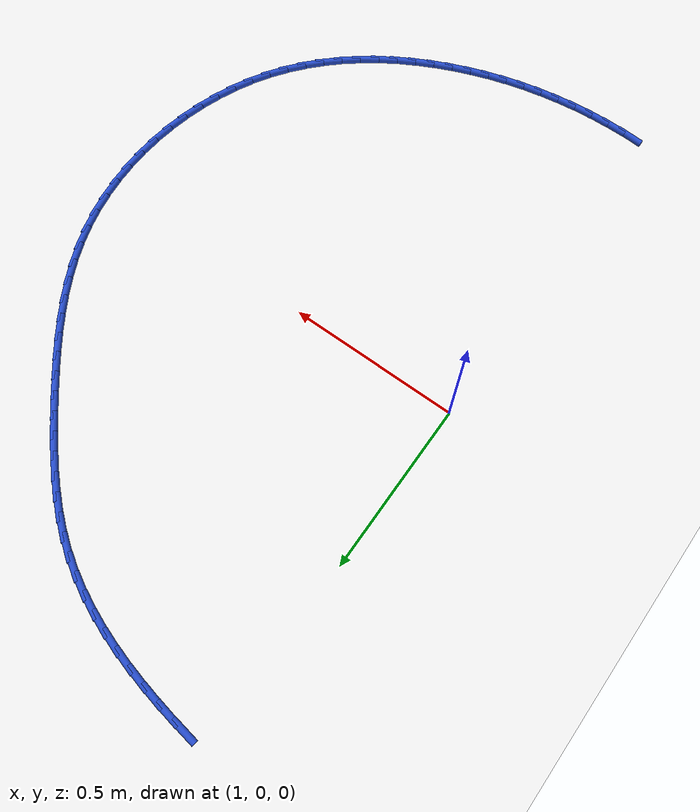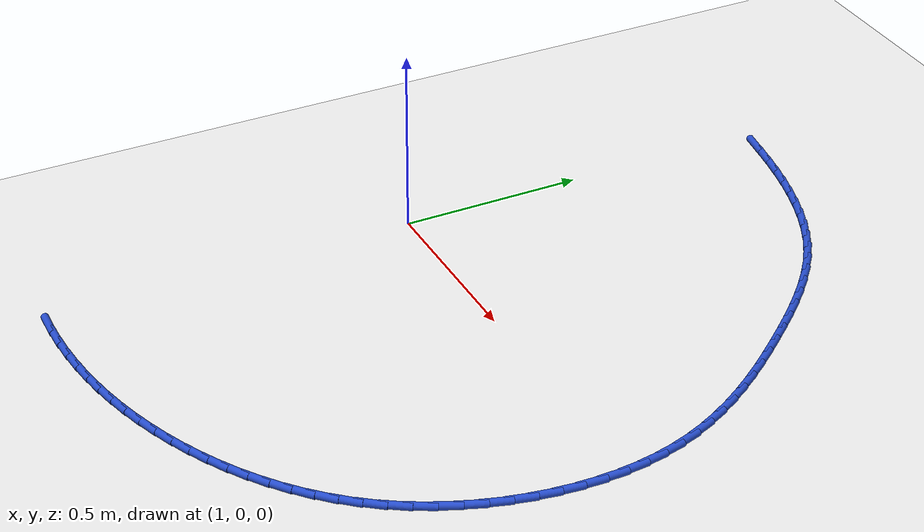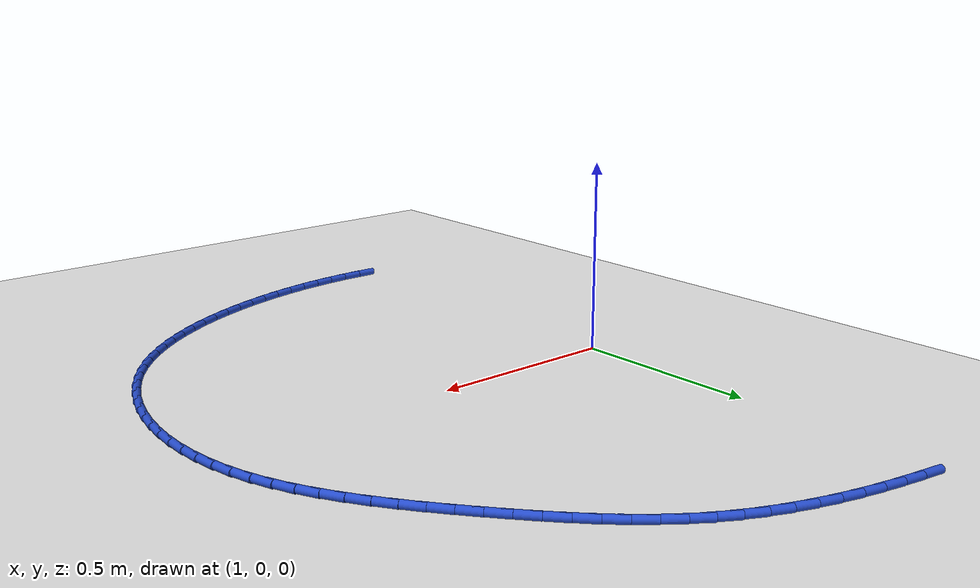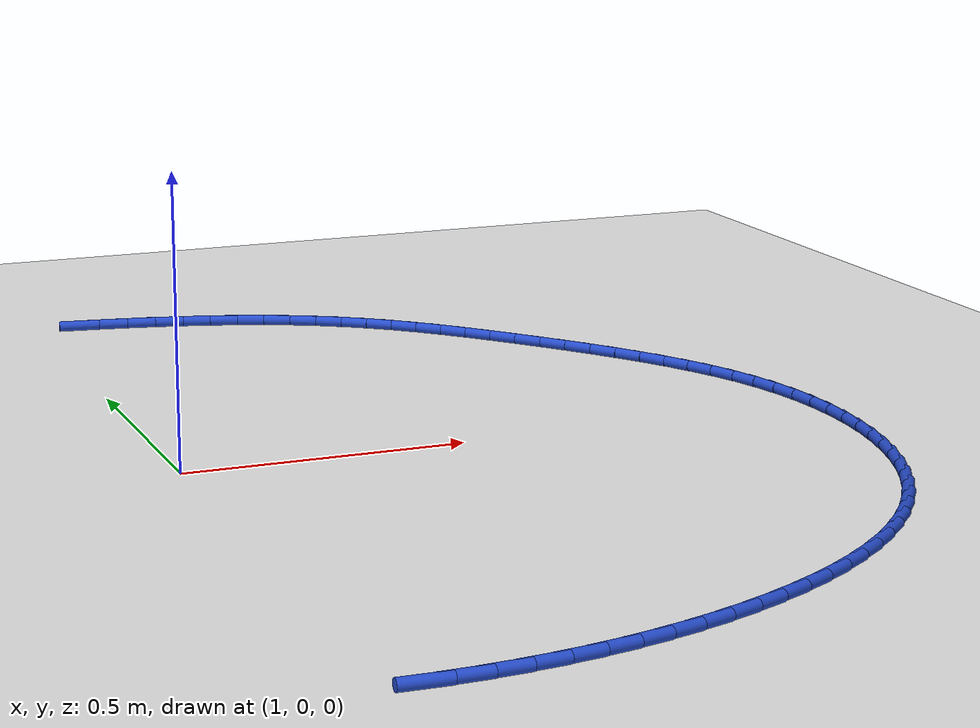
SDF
<sdf version="1.6">
 <world name="default">
  <model name="ground_plane">
   <static>1</static>
   <link name="link">
    <collision name="collision">
     <geometry><plane><normal>0 0 1</normal><size>100 100</size></plane></geometry>
     <surface><friction><ode><mu>100</mu><mu2>50</mu2></ode></friction></surface>
    </collision>
    <visual name="visual">
     <cast_shadows>0</cast_shadows>
     <geometry><plane><normal>0 0 1</normal><size>100 100</size></plane></geometry>
     <material>
      <script><uri>file://media/materials/scripts/gazebo.material</uri><name>Gazebo/WhiteGlow</name></script>
     </material>
    </visual>
   </link>
  </model>
  <model name="line">
   <link name="link_31">
    <pose>1.0755507191373945 1.0408106794839613 0.01 0 1.57 -0.15274278381290923</pose>
    <collision name="collision">
     <geometry><cylinder><radius>0.01</radius><length>0.08</length></cylinder></geometry>
    </collision>
    <visual name="visual">
     <material>
      <script><name>Gazebo/Blue</name><uri>file://media/materials/scripts/gazebo.material</uri></script>
     </material>
     <geometry><cylinder><radius>0.01</radius><length>0.08</length></cylinder></geometry>
    </visual>
   </link>
   <link name="link_32">
    <pose>1.1322137390315314 1.0320878709273174 0.01 0 1.57 -0.17810743716332833</pose>
    <collision name="collision">
     <geometry><cylinder><radius>0.01</radius><length>0.08</length></cylinder></geometry>
    </collision>
    <visual name="visual">
     <material>
      <script><name>Gazebo/Blue</name><uri>file://media/materials/scripts/gazebo.material</uri></script>
     </material>
     <geometry><cylinder><radius>0.01</radius><length>0.08</length></cylinder></geometry>
    </visual>
   </link>
   <link name="link_33">
    <pose>1.1882256495577326 1.022004888605066 0.01 0 1.57 -0.20797148081283154</pose>
    <collision name="collision">
     <geometry><cylinder><radius>0.01</radius><length>0.08</length></cylinder></geometry>
    </collision>
    <visual name="visual">
     <material>
      <script><name>Gazebo/Blue</name><uri>file://media/materials/scripts/gazebo.material</uri></script>
     </material>
     <geometry><cylinder><radius>0.01</radius><length>0.08</length></cylinder></geometry>
    </visual>
   </link>
   <link name="link_34">
    <pose>1.2434393759140787 1.0103535398881984 0.01 0 1.57 -0.2425629102161109</pose>
    <collision name="collision">
     <geometry><cylinder><radius>0.01</radius><length>0.08</length></cylinder></geometry>
    </collision>
    <visual name="visual">
     <material>
      <script><name>Gazebo/Blue</name><uri>file://media/materials/scripts/gazebo.material</uri></script>
     </material>
     <geometry><cylinder><radius>0.01</radius><length>0.08</length></cylinder></geometry>
    </visual>
   </link>
   <link name="link_35">
    <pose>1.2977078432986502 0.9969256321477061 0.01 0 1.57 -0.2821113687866001</pose>
    <collision name="collision">
     <geometry><cylinder><radius>0.01</radius><length>0.08</length></cylinder></geometry>
    </collision>
    <visual name="visual">
     <material>
      <script><name>Gazebo/Blue</name><uri>file://media/materials/scripts/gazebo.material</uri></script>
     </material>
     <geometry><cylinder><radius>0.01</radius><length>0.08</length></cylinder></geometry>
    </visual>
   </link>
   <link name="link_36">
    <pose>1.3508839769095273 0.9815129727545798 0.01 0 1.57 -0.32682551608473864</pose>
    <collision name="collision">
     <geometry><cylinder><radius>0.01</radius><length>0.08</length></cylinder></geometry>
    </collision>
    <visual name="visual">
     <material>
      <script><name>Gazebo/Blue</name><uri>file://media/materials/scripts/gazebo.material</uri></script>
     </material>
     <geometry><cylinder><radius>0.01</radius><length>0.08</length></cylinder></geometry>
    </visual>
   </link>
   <link name="link_37">
    <pose>1.402820701944791 0.9639073690798109 0.01 0 1.57 -0.37686257816579866</pose>
    <collision name="collision">
     <geometry><cylinder><radius>0.01</radius><length>0.08</length></cylinder></geometry>
    </collision>
    <visual name="visual">
     <material>
      <script><name>Gazebo/Blue</name><uri>file://media/materials/scripts/gazebo.material</uri></script>
     </material>
     <geometry><cylinder><radius>0.01</radius><length>0.08</length></cylinder></geometry>
    </visual>
   </link>
   <link name="link_38">
    <pose>1.4533709436025215 0.9439006284943905 0.01 0 1.57 -0.43228979436555137</pose>
    <collision name="collision">
     <geometry><cylinder><radius>0.01</radius><length>0.08</length></cylinder></geometry>
    </collision>
    <visual name="visual">
     <material>
      <script><name>Gazebo/Blue</name><uri>file://media/materials/scripts/gazebo.material</uri></script>
     </material>
     <geometry><cylinder><radius>0.01</radius><length>0.08</length></cylinder></geometry>
    </visual>
   </link>
   <link name="link_39">
    <pose>1.502387627080799 0.9212845583693094 0.01 0 1.57 -0.49303936484141947</pose>
    <collision name="collision">
     <geometry><cylinder><radius>0.01</radius><length>0.08</length></cylinder></geometry>
    </collision>
    <visual name="visual">
     <material>
      <script><name>Gazebo/Blue</name><uri>file://media/materials/scripts/gazebo.material</uri></script>
     </material>
     <geometry><cylinder><radius>0.01</radius><length>0.08</length></cylinder></geometry>
    </visual>
   </link>
   <link name="link_40">
    <pose>1.5497236775777044 0.8958509660755594 0.01 0 1.57 -0.5588614653972996</pose>
    <collision name="collision">
     <geometry><cylinder><radius>0.01</radius><length>0.08</length></cylinder></geometry>
    </collision>
    <visual name="visual">
     <material>
      <script><name>Gazebo/Blue</name><uri>file://media/materials/scripts/gazebo.material</uri></script>
     </material>
     <geometry><cylinder><radius>0.01</radius><length>0.08</length></cylinder></geometry>
    </visual>
   </link>
   <link name="link_41">
    <pose>1.5952320202913177 0.867391658984131 0.01 0 1.57 -0.6274173639918132</pose>
    <collision name="collision">
     <geometry><cylinder><radius>0.01</radius><length>0.08</length></cylinder></geometry>
    </collision>
    <visual name="visual">
     <material>
      <script><name>Gazebo/Blue</name><uri>file://media/materials/scripts/gazebo.material</uri></script>
     </material>
     <geometry><cylinder><radius>0.01</radius><length>0.08</length></cylinder></geometry>
    </visual>
   </link>
   <link name="link_42">
    <pose>1.6388166780731235 0.8357855222706769 0.01 0 1.57 -0.689768912834953</pose>
    <collision name="collision">
     <geometry><cylinder><radius>0.01</radius><length>0.08</length></cylinder></geometry>
    </collision>
    <visual name="visual">
     <material>
      <script><name>Gazebo/Blue</name><uri>file://media/materials/scripts/gazebo.material</uri></script>
     </material>
     <geometry><cylinder><radius>0.01</radius><length>0.08</length></cylinder></geometry>
    </visual>
   </link>
   <link name="link_43">
    <pose>1.6806130351658346 0.8013057144421976 0.01 0 1.57 -0.7434403809360144</pose>
    <collision name="collision">
     <geometry><cylinder><radius>0.01</radius><length>0.08</length></cylinder></geometry>
    </collision>
    <visual name="visual">
     <material>
      <script><name>Gazebo/Blue</name><uri>file://media/materials/scripts/gazebo.material</uri></script>
     </material>
     <geometry><cylinder><radius>0.01</radius><length>0.08</length></cylinder></geometry>
    </visual>
   </link>
   <link name="link_44">
    <pose>1.7208219255102906 0.7643369297739536 0.01 0 1.57 -0.788617840740568</pose>
    <collision name="collision">
     <geometry><cylinder><radius>0.01</radius><length>0.08</length></cylinder></geometry>
    </collision>
    <visual name="visual">
     <material>
      <script><name>Gazebo/Blue</name><uri>file://media/materials/scripts/gazebo.material</uri></script>
     </material>
     <geometry><cylinder><radius>0.01</radius><length>0.08</length></cylinder></geometry>
    </visual>
   </link>
   <link name="link_45">
    <pose>1.7596441871247892 0.7252638694897823 0.01 0 1.57 -0.8256187124610725</pose>
    <collision name="collision">
     <geometry><cylinder><radius>0.01</radius><length>0.08</length></cylinder></geometry>
    </collision>
    <visual name="visual">
     <material>
      <script><name>Gazebo/Blue</name><uri>file://media/materials/scripts/gazebo.material</uri></script>
     </material>
     <geometry><cylinder><radius>0.01</radius><length>0.08</length></cylinder></geometry>
    </visual>
   </link>
   <link name="link_46">
    <pose>1.7972806580276262 0.6844712348135211 0.01 0 1.57 -0.8547972897944801</pose>
    <collision name="collision">
     <geometry><cylinder><radius>0.01</radius><length>0.08</length></cylinder></geometry>
    </collision>
    <visual name="visual">
     <material>
      <script><name>Gazebo/Blue</name><uri>file://media/materials/scripts/gazebo.material</uri></script>
     </material>
     <geometry><cylinder><radius>0.01</radius><length>0.08</length></cylinder></geometry>
    </visual>
   </link>
   <link name="link_47">
    <pose>1.8339321762370986 0.6423437269690067 0.01 0 1.57 -0.8764782799864835</pose>
    <collision name="collision">
     <geometry><cylinder><radius>0.01</radius><length>0.08</length></cylinder></geometry>
    </collision>
    <visual name="visual">
     <material>
      <script><name>Gazebo/Blue</name><uri>file://media/materials/scripts/gazebo.material</uri></script>
     </material>
     <geometry><cylinder><radius>0.01</radius><length>0.08</length></cylinder></geometry>
    </visual>
   </link>
   <link name="link_48">
    <pose>1.869799579771503 0.5992660471800766 0.01 0 1.57 -0.8917826799021745</pose>
    <collision name="collision">
     <geometry><cylinder><radius>0.01</radius><length>0.08</length></cylinder></geometry>
    </collision>
    <visual name="visual">
     <material>
      <script><name>Gazebo/Blue</name><uri>file://media/materials/scripts/gazebo.material</uri></script>
     </material>
     <geometry><cylinder><radius>0.01</radius><length>0.08</length></cylinder></geometry>
    </visual>
   </link>
   <link name="link_49">
    <pose>1.905047419999191 0.5555901207614138 0.01 0 1.57 -0.9088186584419957</pose>
    <collision name="collision">
     <geometry><cylinder><radius>0.01</radius><length>0.08</length></cylinder></geometry>
    </collision>
    <visual name="visual">
     <material>
      <script><name>Gazebo/Blue</name><uri>file://media/materials/scripts/gazebo.material</uri></script>
     </material>
     <geometry><cylinder><radius>0.01</radius><length>0.08</length></cylinder></geometry>
    </visual>
   </link>
   <link name="link_50">
    <pose>1.9395085607186353 0.5113682762979235 0.01 0 1.57 -0.9319812653320456</pose>
    <collision name="collision">
     <geometry><cylinder><radius>0.01</radius><length>0.08</length></cylinder></geometry>
    </collision>
    <visual name="visual">
     <material>
      <script><name>Gazebo/Blue</name><uri>file://media/materials/scripts/gazebo.material</uri></script>
     </material>
     <geometry><cylinder><radius>0.01</radius><length>0.08</length></cylinder></geometry>
    </visual>
   </link>
   <link name="link_51">
    <pose>1.9728381178892556 0.46649229167517553 0.01 0 1.57 -0.9614909935804045</pose>
    <collision name="collision">
     <geometry><cylinder><radius>0.01</radius><length>0.08</length></cylinder></geometry>
    </collision>
    <visual name="visual">
     <material>
      <script><name>Gazebo/Blue</name><uri>file://media/materials/scripts/gazebo.material</uri></script>
     </material>
     <geometry><cylinder><radius>0.01</radius><length>0.08</length></cylinder></geometry>
    </visual>
   </link>
   <link name="link_52">
    <pose>2.0046895174306933 0.42085241825065534 0.01 0 1.57 -0.9975577244573617</pose>
    <collision name="collision">
     <geometry><cylinder><radius>0.01</radius><length>0.08</length></cylinder></geometry>
    </collision>
    <visual name="visual">
     <material>
      <script><name>Gazebo/Blue</name><uri>file://media/materials/scripts/gazebo.material</uri></script>
     </material>
     <geometry><cylinder><radius>0.01</radius><length>0.08</length></cylinder></geometry>
    </visual>
   </link>
   <link name="link_53">
    <pose>2.0347161852625906 0.3743389073818491 0.01 0 1.57 -1.0403870043586707</pose>
    <collision name="collision">
     <geometry><cylinder><radius>0.01</radius><length>0.08</length></cylinder></geometry>
    </collision>
    <visual name="visual">
     <material>
      <script><name>Gazebo/Blue</name><uri>file://media/materials/scripts/gazebo.material</uri></script>
     </material>
     <geometry><cylinder><radius>0.01</radius><length>0.08</length></cylinder></geometry>
    </visual>
   </link>
   <link name="link_54">
    <pose>2.0625715473045902 0.32684201042624167 0.01 0 1.57 -1.0901329391646772</pose>
    <collision name="collision">
     <geometry><cylinder><radius>0.01</radius><length>0.08</length></cylinder></geometry>
    </collision>
    <visual name="visual">
     <material>
      <script><name>Gazebo/Blue</name><uri>file://media/materials/scripts/gazebo.material</uri></script>
     </material>
     <geometry><cylinder><radius>0.01</radius><length>0.08</length></cylinder></geometry>
    </visual>
   </link>
   <link name="link_55">
    <pose>2.0879090294763323 0.27825197874131924 0.01 0 1.57 -1.1468370578869689</pose>
    <collision name="collision">
     <geometry><cylinder><radius>0.01</radius><length>0.08</length></cylinder></geometry>
    </collision>
    <visual name="visual">
     <material>
      <script><name>Gazebo/Blue</name><uri>file://media/materials/scripts/gazebo.material</uri></script>
     </material>
     <geometry><cylinder><radius>0.01</radius><length>0.08</length></cylinder></geometry>
    </visual>
   </link>
   <link name="link_56">
    <pose>2.110382057697461 0.22845906368456703 0.01 0 1.57 -1.2103554703952955</pose>
    <collision name="collision">
     <geometry><cylinder><radius>0.01</radius><length>0.08</length></cylinder></geometry>
    </collision>
    <visual name="visual">
     <material>
      <script><name>Gazebo/Blue</name><uri>file://media/materials/scripts/gazebo.material</uri></script>
     </material>
     <geometry><cylinder><radius>0.01</radius><length>0.08</length></cylinder></geometry>
    </visual>
   </link>
   <link name="link_57">
    <pose>2.1296440578876172 0.17735351661347126 0.01 0 1.57 -1.2802807006117836</pose>
    <collision name="collision">
     <geometry><cylinder><radius>0.01</radius><length>0.08</length></cylinder></geometry>
    </collision>
    <visual name="visual">
     <material>
      <script><name>Gazebo/Blue</name><uri>file://media/materials/scripts/gazebo.material</uri></script>
     </material>
     <geometry><cylinder><radius>0.01</radius><length>0.08</length></cylinder></geometry>
    </visual>
   </link>
   <link name="link_58">
    <pose>2.145348538040335 0.12482567703524124 0.01 0 1.57 -1.353923797412149</pose>
    <collision name="collision">
     <geometry><cylinder><radius>0.01</radius><length>0.08</length></cylinder></geometry>
    </collision>
    <visual name="visual">
     <material>
      <script><name>Gazebo/Blue</name><uri>file://media/materials/scripts/gazebo.material</uri></script>
     </material>
     <geometry><cylinder><radius>0.01</radius><length>0.08</length></cylinder></geometry>
    </visual>
   </link>
   <link name="link_59">
    <pose>2.1572387244276423 0.07086224447241624 0.01 0 1.57 -1.4252747532248986</pose>
    <collision name="collision">
     <geometry><cylinder><radius>0.01</radius><length>0.08</length></cylinder></geometry>
    </collision>
    <visual name="visual">
     <material>
      <script><name>Gazebo/Blue</name><uri>file://media/materials/scripts/gazebo.material</uri></script>
     </material>
     <geometry><cylinder><radius>0.01</radius><length>0.08</length></cylinder></geometry>
    </visual>
   </link>
   <link name="link_60">
    <pose>2.165318751198488 0.01573014102248704 0.01 0 1.57 -1.4937622412520262</pose>
    <collision name="collision">
     <geometry><cylinder><radius>0.01</radius><length>0.08</length></cylinder></geometry>
    </collision>
    <visual name="visual">
     <material>
      <script><name>Gazebo/Blue</name><uri>file://media/materials/scripts/gazebo.material</uri></script>
     </material>
     <geometry><cylinder><radius>0.01</radius><length>0.08</length></cylinder></geometry>
    </visual>
   </link>
   <link name="link_61">
    <pose>2.16963991656912 -0.040253055650274296 0.01 0 1.57 -1.5599397490715088</pose>
    <collision name="collision">
     <geometry><cylinder><radius>0.01</radius><length>0.08</length></cylinder></geometry>
    </collision>
    <visual name="visual">
     <material>
      <script><name>Gazebo/Blue</name><uri>file://media/materials/scripts/gazebo.material</uri></script>
     </material>
     <geometry><cylinder><radius>0.01</radius><length>0.08</length></cylinder></geometry>
    </visual>
   </link>
   <link name="link_62">
    <pose>2.1702535187557834 -0.09676976788159691 0.01 0 1.57 1.5172160595977386</pose>
    <collision name="collision">
     <geometry><cylinder><radius>0.01</radius><length>0.08</length></cylinder></geometry>
    </collision>
    <visual name="visual">
     <material>
      <script><name>Gazebo/Blue</name><uri>file://media/materials/scripts/gazebo.material</uri></script>
     </material>
     <geometry><cylinder><radius>0.01</radius><length>0.08</length></cylinder></geometry>
    </visual>
   </link>
   <link name="link_63">
    <pose>2.1672108559747234 -0.15350241800721007 0.01 0 1.57 1.4539460994950855</pose>
    <collision name="collision">
     <geometry><cylinder><radius>0.01</radius><length>0.08</length></cylinder></geometry>
    </collision>
    <visual name="visual">
     <material>
      <script><name>Gazebo/Blue</name><uri>file://media/materials/scripts/gazebo.material</uri></script>
     </material>
     <geometry><cylinder><radius>0.01</radius><length>0.08</length></cylinder></geometry>
    </visual>
   </link>
   <link name="link_64">
    <pose>2.160563226442186 -0.21013342836284107 0.01 0 1.57 1.3912705184058947</pose>
    <collision name="collision">
     <geometry><cylinder><radius>0.01</radius><length>0.08</length></cylinder></geometry>
    </collision>
    <visual name="visual">
     <material>
      <script><name>Gazebo/Blue</name><uri>file://media/materials/scripts/gazebo.material</uri></script>
     </material>
     <geometry><cylinder><radius>0.01</radius><length>0.08</length></cylinder></geometry>
    </visual>
   </link>
   <link name="link_65">
    <pose>2.1503619283744184 -0.2663452212842193 0.01 0 1.57 1.3286203474115053</pose>
    <collision name="collision">
     <geometry><cylinder><radius>0.01</radius><length>0.08</length></cylinder></geometry>
    </collision>
    <visual name="visual">
     <material>
      <script><name>Gazebo/Blue</name><uri>file://media/materials/scripts/gazebo.material</uri></script>
     </material>
     <geometry><cylinder><radius>0.01</radius><length>0.08</length></cylinder></geometry>
    </visual>
   </link>
   <link name="link_66">
    <pose>2.136658259987665 -0.321820219107074 0.01 0 1.57 1.265430843178906</pose>
    <collision name="collision">
     <geometry><cylinder><radius>0.01</radius><length>0.08</length></cylinder></geometry>
    </collision>
    <visual name="visual">
     <material>
      <script><name>Gazebo/Blue</name><uri>file://media/materials/scripts/gazebo.material</uri></script>
     </material>
     <geometry><cylinder><radius>0.01</radius><length>0.08</length></cylinder></geometry>
    </visual>
   </link>
   <link name="link_67">
    <pose>2.119503519498173 -0.37624084416713266 0.01 0 1.57 1.201142310690339</pose>
    <collision name="collision">
     <geometry><cylinder><radius>0.01</radius><length>0.08</length></cylinder></geometry>
    </collision>
    <visual name="visual">
     <material>
      <script><name>Gazebo/Blue</name><uri>file://media/materials/scripts/gazebo.material</uri></script>
     </material>
     <geometry><cylinder><radius>0.01</radius><length>0.08</length></cylinder></geometry>
    </visual>
   </link>
   <link name="link_68">
    <pose>2.0989490051221877 -0.42928951880012445 0.01 0 1.57 1.1352027239311007</pose>
    <collision name="collision">
     <geometry><cylinder><radius>0.01</radius><length>0.08</length></cylinder></geometry>
    </collision>
    <visual name="visual">
     <material>
      <script><name>Gazebo/Blue</name><uri>file://media/materials/scripts/gazebo.material</uri></script>
     </material>
     <geometry><cylinder><radius>0.01</radius><length>0.08</length></cylinder></geometry>
    </visual>
   </link>
   <link name="link_69">
    <pose>2.0750460150759555 -0.48064866534177836 0.01 0 1.57 1.0670738874729635</pose>
    <collision name="collision">
     <geometry><cylinder><radius>0.01</radius><length>0.08</length></cylinder></geometry>
    </collision>
    <visual name="visual">
     <material>
      <script><name>Gazebo/Blue</name><uri>file://media/materials/scripts/gazebo.material</uri></script>
     </material>
     <geometry><cylinder><radius>0.01</radius><length>0.08</length></cylinder></geometry>
    </visual>
   </link>
   <link name="link_70">
    <pose>2.0478458475757213 -0.5300007061278235 0.01 0 1.57 0.9962442298377826</pose>
    <collision name="collision">
     <geometry><cylinder><radius>0.01</radius><length>0.08</length></cylinder></geometry>
    </collision>
    <visual name="visual">
     <material>
      <script><name>Gazebo/Blue</name><uri>file://media/materials/scripts/gazebo.material</uri></script>
     </material>
     <geometry><cylinder><radius>0.01</radius><length>0.08</length></cylinder></geometry>
    </visual>
   </link>
   <link name="link_71">
    <pose>2.0173998380540947 -0.5770281306067411 0.01 0 1.57 0.9237049783766553</pose>
    <collision name="collision">
     <geometry><cylinder><radius>0.01</radius><length>0.08</length></cylinder></geometry>
    </collision>
    <visual name="visual">
     <material>
      <script><name>Gazebo/Blue</name><uri>file://media/materials/scripts/gazebo.material</uri></script>
     </material>
     <geometry><cylinder><radius>0.01</radius><length>0.08</length></cylinder></geometry>
    </visual>
   </link>
   <link name="link_72">
    <pose>1.9838024430563928 -0.6214911890928466 0.01 0 1.57 0.8536274226654084</pose>
    <collision name="collision">
     <geometry><cylinder><radius>0.01</radius><length>0.08</length></cylinder></geometry>
    </collision>
    <visual name="visual">
     <material>
      <script><name>Gazebo/Blue</name><uri>file://media/materials/scripts/gazebo.material</uri></script>
     </material>
     <geometry><cylinder><radius>0.01</radius><length>0.08</length></cylinder></geometry>
    </visual>
   </link>
   <link name="link_73">
    <pose>1.947274353232281 -0.6633777715098135 0.01 0 1.57 0.7869807279881472</pose>
    <collision name="collision">
     <geometry><cylinder><radius>0.01</radius><length>0.08</length></cylinder></geometry>
    </collision>
    <visual name="visual">
     <material>
      <script><name>Gazebo/Blue</name><uri>file://media/materials/scripts/gazebo.material</uri></script>
     </material>
     <geometry><cylinder><radius>0.01</radius><length>0.08</length></cylinder></geometry>
    </visual>
   </link>
   <link name="link_74">
    <pose>1.9080592375715164 -0.7027172049221645 0.01 0 1.57 0.7238443207914395</pose>
    <collision name="collision">
     <geometry><cylinder><radius>0.01</radius><length>0.08</length></cylinder></geometry>
    </collision>
    <visual name="visual">
     <material>
      <script><name>Gazebo/Blue</name><uri>file://media/materials/scripts/gazebo.material</uri></script>
     </material>
     <geometry><cylinder><radius>0.01</radius><length>0.08</length></cylinder></geometry>
    </visual>
   </link>
   <link name="link_75">
    <pose>1.8664007650638552 -0.73953881639442 0.01 0 1.57 0.6641782035808093</pose>
    <collision name="collision">
     <geometry><cylinder><radius>0.01</radius><length>0.08</length></cylinder></geometry>
    </collision>
    <visual name="visual">
     <material>
      <script><name>Gazebo/Blue</name><uri>file://media/materials/scripts/gazebo.material</uri></script>
     </material>
     <geometry><cylinder><radius>0.01</radius><length>0.08</length></cylinder></geometry>
    </visual>
   </link>
   <link name="link_76">
    <pose>1.822542604699053 -0.7738719329911027 0.01 0 1.57 0.6078492902973405</pose>
    <collision name="collision">
     <geometry><cylinder><radius>0.01</radius><length>0.08</length></cylinder></geometry>
    </collision>
    <visual name="visual">
     <material>
      <script><name>Gazebo/Blue</name><uri>file://media/materials/scripts/gazebo.material</uri></script>
     </material>
     <geometry><cylinder><radius>0.01</radius><length>0.08</length></cylinder></geometry>
    </visual>
   </link>
   <link name="link_77">
    <pose>1.776728425466868 -0.8057458817767348 0.01 0 1.57 0.5546561199961233</pose>
    <collision name="collision">
     <geometry><cylinder><radius>0.01</radius><length>0.08</length></cylinder></geometry>
    </collision>
    <visual name="visual">
     <material>
      <script><name>Gazebo/Blue</name><uri>file://media/materials/scripts/gazebo.material</uri></script>
     </material>
     <geometry><cylinder><radius>0.01</radius><length>0.08</length></cylinder></geometry>
    </visual>
   </link>
   <link name="link_78">
    <pose>1.729201896357054 -0.8351899898158381 0.01 0 1.57 0.5043498652354494</pose>
    <collision name="collision">
     <geometry><cylinder><radius>0.01</radius><length>0.08</length></cylinder></geometry>
    </collision>
    <visual name="visual">
     <material>
      <script><name>Gazebo/Blue</name><uri>file://media/materials/scripts/gazebo.material</uri></script>
     </material>
     <geometry><cylinder><radius>0.01</radius><length>0.08</length></cylinder></geometry>
    </visual>
   </link>
   <link name="link_79">
    <pose>1.6802066863593696 -0.862233584172934 0.01 0 1.57 0.4566507887661228</pose>
    <collision name="collision">
     <geometry><cylinder><radius>0.01</radius><length>0.08</length></cylinder></geometry>
    </collision>
    <visual name="visual">
     <material>
      <script><name>Gazebo/Blue</name><uri>file://media/materials/scripts/gazebo.material</uri></script>
     </material>
     <geometry><cylinder><radius>0.01</radius><length>0.08</length></cylinder></geometry>
    </visual>
   </link>
   <link name="link_80">
    <pose>1.6299864644635709 -0.886905991912545 0.01 0 1.57 0.41126012132059125</pose>
    <collision name="collision">
     <geometry><cylinder><radius>0.01</radius><length>0.08</length></cylinder></geometry>
    </collision>
    <visual name="visual">
     <material>
      <script><name>Gazebo/Blue</name><uri>file://media/materials/scripts/gazebo.material</uri></script>
     </material>
     <geometry><cylinder><radius>0.01</radius><length>0.08</length></cylinder></geometry>
    </visual>
   </link>
   <link name="link_81">
    <pose>1.578784899659413 -0.9092365400991932 0.01 0 1.57 0.3678677719715935</pose>
    <collision name="collision">
     <geometry><cylinder><radius>0.01</radius><length>0.08</length></cylinder></geometry>
    </collision>
    <visual name="visual">
     <material>
      <script><name>Gazebo/Blue</name><uri>file://media/materials/scripts/gazebo.material</uri></script>
     </material>
     <geometry><cylinder><radius>0.01</radius><length>0.08</length></cylinder></geometry>
    </visual>
   </link>
   <link name="link_82">
    <pose>1.5268456609366539 -0.9292545557973997 0.01 0 1.57 0.32593065447675573</pose>
    <collision name="collision">
     <geometry><cylinder><radius>0.01</radius><length>0.08</length></cylinder></geometry>
    </collision>
    <visual name="visual">
     <material>
      <script><name>Gazebo/Blue</name><uri>file://media/materials/scripts/gazebo.material</uri></script>
     </material>
     <geometry><cylinder><radius>0.01</radius><length>0.08</length></cylinder></geometry>
    </visual>
   </link>
   <link name="link_83">
    <pose>1.4743818952818053 -0.9469864899810966 0.01 0 1.57 0.2841646172015052</pose>
    <collision name="collision">
     <geometry><cylinder><radius>0.01</radius><length>0.08</length></cylinder></geometry>
    </collision>
    <visual name="visual">
     <material>
      <script><name>Gazebo/Blue</name><uri>file://media/materials/scripts/gazebo.material</uri></script>
     </material>
     <geometry><cylinder><radius>0.01</radius><length>0.08</length></cylinder></geometry>
    </visual>
   </link>
   <link name="link_84">
    <pose>1.4214557434676494 -0.9624445642976883 0.01 0 1.57 0.2423104666342926</pose>
    <collision name="collision">
     <geometry><cylinder><radius>0.01</radius><length>0.08</length></cylinder></geometry>
    </collision>
    <visual name="visual">
     <material>
      <script><name>Gazebo/Blue</name><uri>file://media/materials/scripts/gazebo.material</uri></script>
     </material>
     <geometry><cylinder><radius>0.01</radius><length>0.08</length></cylinder></geometry>
    </visual>
   </link>
   <link name="link_85">
    <pose>1.368082730401247 -0.9756366077781563 0.01 0 1.57 0.20048475082426392</pose>
    <collision name="collision">
     <geometry><cylinder><radius>0.01</radius><length>0.08</length></cylinder></geometry>
    </collision>
    <visual name="visual">
     <material>
      <script><name>Gazebo/Blue</name><uri>file://media/materials/scripts/gazebo.material</uri></script>
     </material>
     <geometry><cylinder><radius>0.01</radius><length>0.08</length></cylinder></geometry>
    </visual>
   </link>
   <link name="link_86">
    <pose>1.3142783675765324 -0.9865704481895595 0.01 0 1.57 0.1588033111144876</pose>
    <collision name="collision">
     <geometry><cylinder><radius>0.01</radius><length>0.08</length></cylinder></geometry>
    </collision>
    <visual name="visual">
     <material>
      <script><name>Gazebo/Blue</name><uri>file://media/materials/scripts/gazebo.material</uri></script>
     </material>
     <geometry><cylinder><radius>0.01</radius><length>0.08</length></cylinder></geometry>
    </visual>
   </link>
   <link name="link_87">
    <pose>1.2600581664874382 -0.9952539132989588 0.01 0 1.57 0.11737912348168442</pose>
    <collision name="collision">
     <geometry><cylinder><radius>0.01</radius><length>0.08</length></cylinder></geometry>
    </collision>
    <visual name="visual">
     <material>
      <script><name>Gazebo/Blue</name><uri>file://media/materials/scripts/gazebo.material</uri></script>
     </material>
     <geometry><cylinder><radius>0.01</radius><length>0.08</length></cylinder></geometry>
    </visual>
   </link>
   <link name="link_88">
    <pose>1.2054376386278969 -1.001694830873414 0.01 0 1.57 0.07632036531491007</pose>
    <collision name="collision">
     <geometry><cylinder><radius>0.01</radius><length>0.08</length></cylinder></geometry>
    </collision>
    <visual name="visual">
     <material>
      <script><name>Gazebo/Blue</name><uri>file://media/materials/scripts/gazebo.material</uri></script>
     </material>
     <geometry><cylinder><radius>0.01</radius><length>0.08</length></cylinder></geometry>
    </visual>
   </link>
   <link name="link_89">
    <pose>1.150432295491842 -1.0059010286799857 0.01 0 1.57 0.035668781562083564</pose>
    <collision name="collision">
     <geometry><cylinder><radius>0.01</radius><length>0.08</length></cylinder></geometry>
    </collision>
    <visual name="visual">
     <material>
      <script><name>Gazebo/Blue</name><uri>file://media/materials/scripts/gazebo.material</uri></script>
     </material>
     <geometry><cylinder><radius>0.01</radius><length>0.08</length></cylinder></geometry>
    </visual>
   </link>
   <link name="link_90">
    <pose>1.095067325117537 -1.0078766676289694 0.01 0 1.57 -0.00512610971116423</pose>
    <collision name="collision">
     <geometry><cylinder><radius>0.01</radius><length>0.08</length></cylinder></geometry>
    </collision>
    <visual name="visual">
     <material>
      <script><name>Gazebo/Blue</name><uri>file://media/materials/scripts/gazebo.material</uri></script>
     </material>
     <geometry><cylinder><radius>0.01</radius><length>0.08</length></cylinder></geometry>
    </visual>
   </link>
   <link name="link_91">
    <pose>1.0394584325893688 -1.0075916078481106 0.01 0 1.57 -0.04655875191834005</pose>
    <collision name="collision">
     <geometry><cylinder><radius>0.01</radius><length>0.08</length></cylinder></geometry>
    </collision>
    <visual name="visual">
     <material>
      <script><name>Gazebo/Blue</name><uri>file://media/materials/scripts/gazebo.material</uri></script>
     </material>
     <geometry><cylinder><radius>0.01</radius><length>0.08</length></cylinder></geometry>
    </visual>
   </link>
  </model>
 </world>
</sdf>
